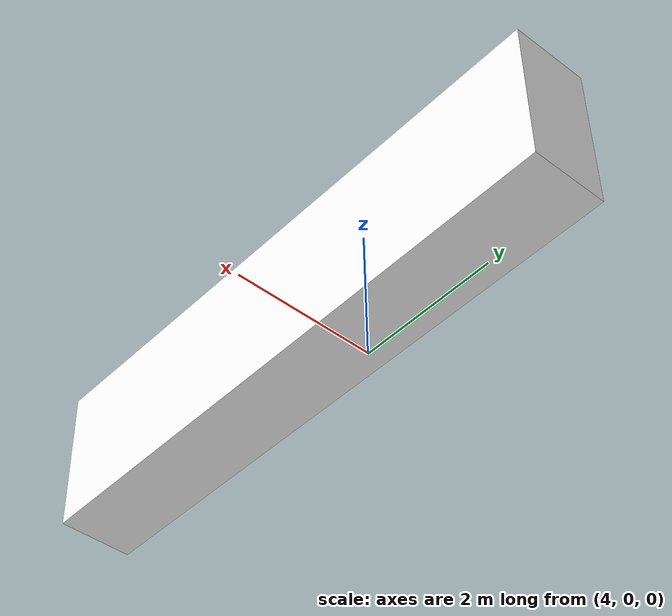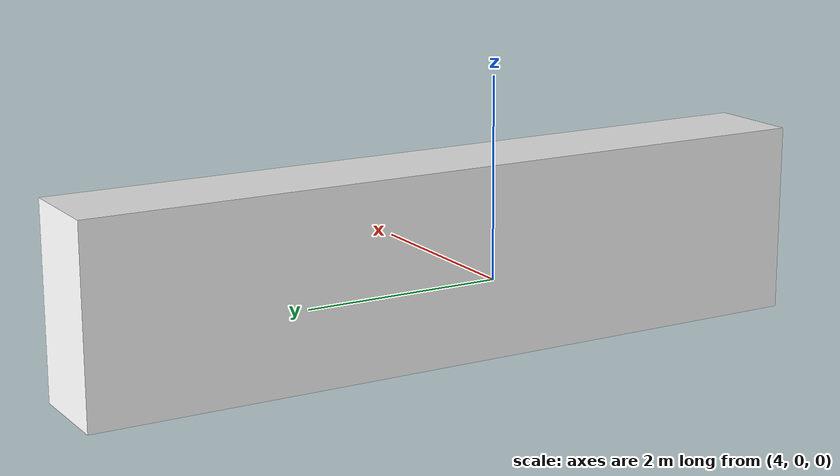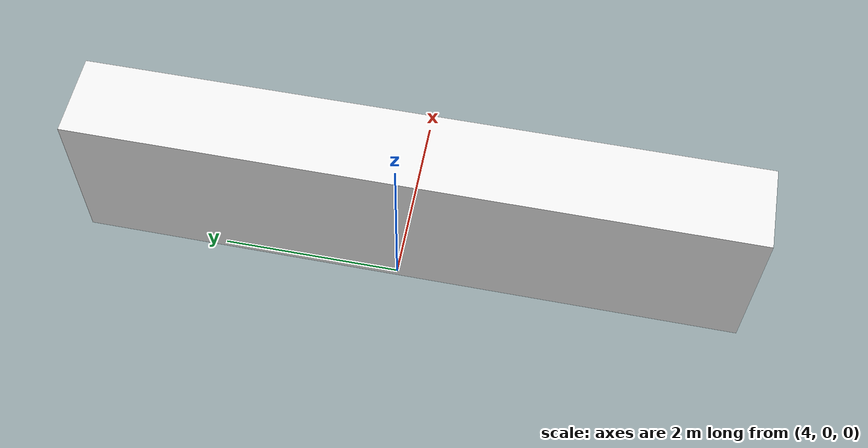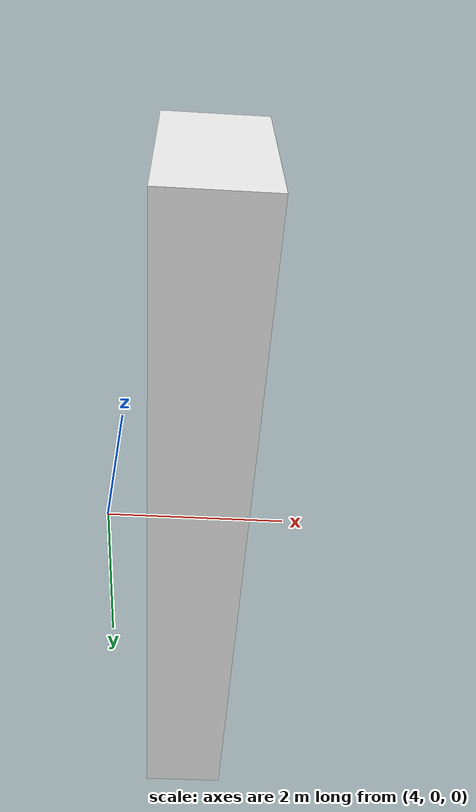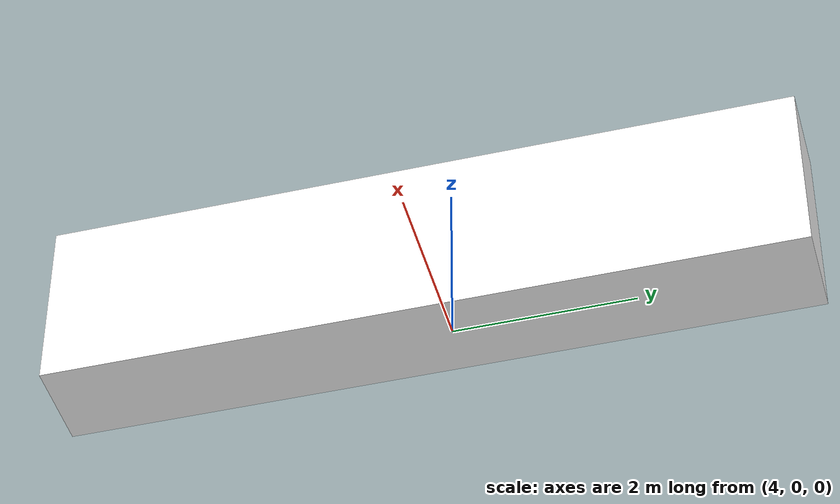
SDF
<sdf version="1.9">
    <model name='wall'>
        <static>true</static>
        <pose>5 0 0 0 0 0</pose><!--pose
            relative to the world-->
        <link name='wall'>
            <visual name='visual'>
                <geometry>
                    <box><size>1 8 2.0</size></box>
                </geometry>
                <material>
                    <diffuse>1.0 1.0 1.0 1.0</diffuse>
                    <specular>0.2 0.2 0.2 1.0</specular>
                    <pbr>
                        <metal>
                            <albedo_map>/home/david/ros2_car_ws/src/gazebo_car_sim_package/models/textures/wall_texture.png</albedo_map>
                        </metal>
                    </pbr>
                </material>
            </visual>
            <collision name='collision'>
                <geometry>
                    <box>
                        <size>1 8 2.0</size>
                    </box>
                </geometry>
                <surface>
                    <contact>
                        <collide_bitmask>0x01</collide_bitmask>
                    </contact>
                    <friction>
                        <ode>
                            <mu>1.0</mu>
                            <mu2>1.0</mu2>
                        </ode>
                    </friction>
                </surface>
            </collision>
        </link>
    </model>
</sdf>
